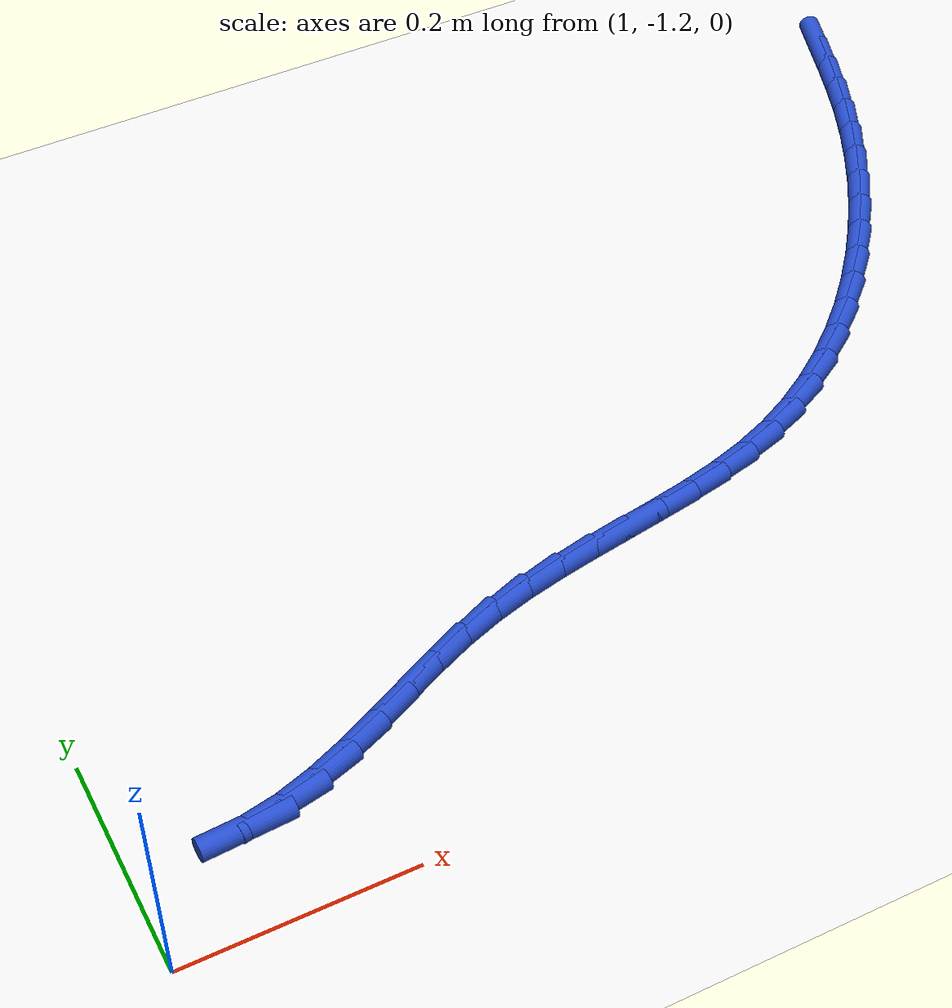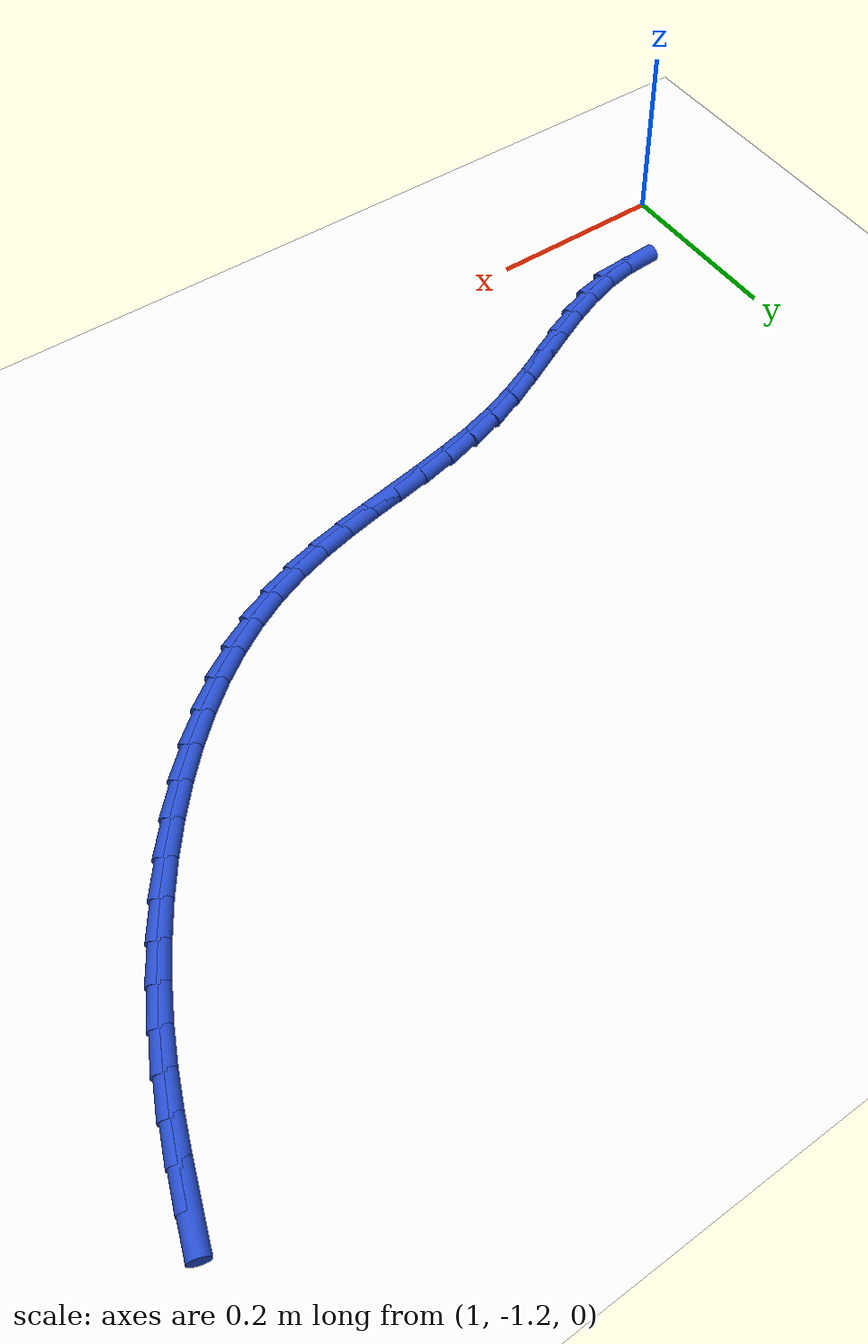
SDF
<sdf version="1.6">
 <world name="default">
  <model name="ground_plane">
   <static>1</static>
   <link name="link">
    <collision name="collision">
     <geometry><plane><normal>0 0 1</normal><size>100 100</size></plane></geometry>
     <surface><friction><ode><mu>100</mu><mu2>50</mu2></ode></friction></surface>
    </collision>
    <visual name="visual">
     <cast_shadows>0</cast_shadows>
     <geometry><plane><normal>0 0 1</normal><size>100 100</size></plane></geometry>
     <material>
      <script><uri>file://media/materials/scripts/gazebo.material</uri><name>Gazebo/WhiteGlow</name></script>
     </material>
    </visual>
   </link>
  </model>
  <model name="line">
   <link name="link_118">
    <pose>1.9770778803152473 -0.5058553416775723 0.01 0 1.57 1.2799804330975286</pose>
    <collision name="collision">
     <geometry><cylinder><radius>0.01</radius><length>0.08</length></cylinder></geometry>
    </collision>
    <visual name="visual">
     <material>
      <script><name>Gazebo/Blue</name><uri>file://media/materials/scripts/gazebo.material</uri></script>
     </material>
     <geometry><cylinder><radius>0.01</radius><length>0.08</length></cylinder></geometry>
    </visual>
   </link>
   <link name="link_119">
    <pose>1.9674425149028936 -0.5380481764186 0.01 0 1.57 1.2593463494385908</pose>
    <collision name="collision">
     <geometry><cylinder><radius>0.01</radius><length>0.08</length></cylinder></geometry>
    </collision>
    <visual name="visual">
     <material>
      <script><name>Gazebo/Blue</name><uri>file://media/materials/scripts/gazebo.material</uri></script>
     </material>
     <geometry><cylinder><radius>0.01</radius><length>0.08</length></cylinder></geometry>
    </visual>
   </link>
   <link name="link_120">
    <pose>1.9571189584123065 -0.5701161801172238 0.01 0 1.57 1.2258387370005617</pose>
    <collision name="collision">
     <geometry><cylinder><radius>0.01</radius><length>0.08</length></cylinder></geometry>
    </collision>
    <visual name="visual">
     <material>
      <script><name>Gazebo/Blue</name><uri>file://media/materials/scripts/gazebo.material</uri></script>
     </material>
     <geometry><cylinder><radius>0.01</radius><length>0.08</length></cylinder></geometry>
    </visual>
   </link>
   <link name="link_121">
    <pose>1.9456061729770204 -0.6021562454951519 0.01 0 1.57 1.1814369075997921</pose>
    <collision name="collision">
     <geometry><cylinder><radius>0.01</radius><length>0.08</length></cylinder></geometry>
    </collision>
    <visual name="visual">
     <material>
      <script><name>Gazebo/Blue</name><uri>file://media/materials/scripts/gazebo.material</uri></script>
     </material>
     <geometry><cylinder><radius>0.01</radius><length>0.08</length></cylinder></geometry>
    </visual>
   </link>
   <link name="link_122">
    <pose>1.9324410077186442 -0.6342424343302945 0.01 0 1.57 1.1340029290755915</pose>
    <collision name="collision">
     <geometry><cylinder><radius>0.01</radius><length>0.08</length></cylinder></geometry>
    </collision>
    <visual name="visual">
     <material>
      <script><name>Gazebo/Blue</name><uri>file://media/materials/scripts/gazebo.material</uri></script>
     </material>
     <geometry><cylinder><radius>0.01</radius><length>0.08</length></cylinder></geometry>
    </visual>
   </link>
   <link name="link_123">
    <pose>1.9175005752696692 -0.6662437634104945 0.01 0 1.57 1.0866487207022986</pose>
    <collision name="collision">
     <geometry><cylinder><radius>0.01</radius><length>0.08</length></cylinder></geometry>
    </collision>
    <visual name="visual">
     <material>
      <script><name>Gazebo/Blue</name><uri>file://media/materials/scripts/gazebo.material</uri></script>
     </material>
     <geometry><cylinder><radius>0.01</radius><length>0.08</length></cylinder></geometry>
    </visual>
   </link>
   <link name="link_124">
    <pose>1.9008417432928035 -0.6979209279810086 0.01 0 1.57 1.0386630814185869</pose>
    <collision name="collision">
     <geometry><cylinder><radius>0.01</radius><length>0.08</length></cylinder></geometry>
    </collision>
    <visual name="visual">
     <material>
      <script><name>Gazebo/Blue</name><uri>file://media/materials/scripts/gazebo.material</uri></script>
     </material>
     <geometry><cylinder><radius>0.01</radius><length>0.08</length></cylinder></geometry>
    </visual>
   </link>
   <link name="link_125">
    <pose>1.882523006493306 -0.7290336428207389 0.01 0 1.57 0.9893360842283133</pose>
    <collision name="collision">
     <geometry><cylinder><radius>0.01</radius><length>0.08</length></cylinder></geometry>
    </collision>
    <visual name="visual">
     <material>
      <script><name>Gazebo/Blue</name><uri>file://media/materials/scripts/gazebo.material</uri></script>
     </material>
     <geometry><cylinder><radius>0.01</radius><length>0.08</length></cylinder></geometry>
    </visual>
   </link>
   <link name="link_126">
    <pose>1.8626028595764363 -0.7593416227085884 0.01 0 1.57 0.9379684176300297</pose>
    <collision name="collision">
     <geometry><cylinder><radius>0.01</radius><length>0.08</length></cylinder></geometry>
    </collision>
    <visual name="visual">
     <material>
      <script><name>Gazebo/Blue</name><uri>file://media/materials/scripts/gazebo.material</uri></script>
     </material>
     <geometry><cylinder><radius>0.01</radius><length>0.08</length></cylinder></geometry>
    </visual>
   </link>
   <link name="link_127">
    <pose>1.8411397972474528 -0.7886045824234593 0.01 0 1.57 0.8838545923353223</pose>
    <collision name="collision">
     <geometry><cylinder><radius>0.01</radius><length>0.08</length></cylinder></geometry>
    </collision>
    <visual name="visual">
     <material>
      <script><name>Gazebo/Blue</name><uri>file://media/materials/scripts/gazebo.material</uri></script>
     </material>
     <geometry><cylinder><radius>0.01</radius><length>0.08</length></cylinder></geometry>
    </visual>
   </link>
   <link name="link_128">
    <pose>1.8181923142116148 -0.8165822367442546 0.01 0 1.57 0.8262732752755951</pose>
    <collision name="collision">
     <geometry><cylinder><radius>0.01</radius><length>0.08</length></cylinder></geometry>
    </collision>
    <visual name="visual">
     <material>
      <script><name>Gazebo/Blue</name><uri>file://media/materials/scripts/gazebo.material</uri></script>
     </material>
     <geometry><cylinder><radius>0.01</radius><length>0.08</length></cylinder></geometry>
    </visual>
   </link>
   <link name="link_129">
    <pose>1.7938189051741829 -0.8430343004498768 0.01 0 1.57 0.7644867837399518</pose>
    <collision name="collision">
     <geometry><cylinder><radius>0.01</radius><length>0.08</length></cylinder></geometry>
    </collision>
    <visual name="visual">
     <material>
      <script><name>Gazebo/Blue</name><uri>file://media/materials/scripts/gazebo.material</uri></script>
     </material>
     <geometry><cylinder><radius>0.01</radius><length>0.08</length></cylinder></geometry>
    </visual>
   </link>
   <link name="link_130">
    <pose>1.7680780648404135 -0.8677204883192278 0.01 0 1.57 0.6977534280284379</pose>
    <collision name="collision">
     <geometry><cylinder><radius>0.01</radius><length>0.08</length></cylinder></geometry>
    </collision>
    <visual name="visual">
     <material>
      <script><name>Gazebo/Blue</name><uri>file://media/materials/scripts/gazebo.material</uri></script>
     </material>
     <geometry><cylinder><radius>0.01</radius><length>0.08</length></cylinder></geometry>
    </visual>
   </link>
   <link name="link_131">
    <pose>1.741028287915568 -0.890400515131211 0.01 0 1.57 0.6253580856650874</pose>
    <collision name="collision">
     <geometry><cylinder><radius>0.01</radius><length>0.08</length></cylinder></geometry>
    </collision>
    <visual name="visual">
     <material>
      <script><name>Gazebo/Blue</name><uri>file://media/materials/scripts/gazebo.material</uri></script>
     </material>
     <geometry><cylinder><radius>0.01</radius><length>0.08</length></cylinder></geometry>
    </visual>
   </link>
   <link name="link_132">
    <pose>1.7127280691049045 -0.9108340956647285 0.01 0 1.57 0.5466674994050639</pose>
    <collision name="collision">
     <geometry><cylinder><radius>0.01</radius><length>0.08</length></cylinder></geometry>
    </collision>
    <visual name="visual">
     <material>
      <script><name>Gazebo/Blue</name><uri>file://media/materials/scripts/gazebo.material</uri></script>
     </material>
     <geometry><cylinder><radius>0.01</radius><length>0.08</length></cylinder></geometry>
    </visual>
   </link>
   <link name="link_133">
    <pose>1.6832359031136819 -0.9287809446986827 0.01 0 1.57 0.4612159250287406</pose>
    <collision name="collision">
     <geometry><cylinder><radius>0.01</radius><length>0.08</length></cylinder></geometry>
    </collision>
    <visual name="visual">
     <material>
      <script><name>Gazebo/Blue</name><uri>file://media/materials/scripts/gazebo.material</uri></script>
     </material>
     <geometry><cylinder><radius>0.01</radius><length>0.08</length></cylinder></geometry>
    </visual>
   </link>
   <link name="link_134">
    <pose>1.6526102846471602 -0.9440007770119767 0.01 0 1.57 0.3700715879662836</pose>
    <collision name="collision">
     <geometry><cylinder><radius>0.01</radius><length>0.08</length></cylinder></geometry>
    </collision>
    <visual name="visual">
     <material>
      <script><name>Gazebo/Blue</name><uri>file://media/materials/scripts/gazebo.material</uri></script>
     </material>
     <geometry><cylinder><radius>0.01</radius><length>0.08</length></cylinder></geometry>
    </visual>
   </link>
   <link name="link_135">
    <pose>1.6209162049503933 -0.9562963532867395 0.01 0 1.57 0.28849870558564455</pose>
    <collision name="collision">
     <geometry><cylinder><radius>0.01</radius><length>0.08</length></cylinder></geometry>
    </collision>
    <visual name="visual">
     <material>
      <script><name>Gazebo/Blue</name><uri>file://media/materials/scripts/gazebo.material</uri></script>
     </material>
     <geometry><cylinder><radius>0.01</radius><length>0.08</length></cylinder></geometry>
    </visual>
   </link>
   <link name="link_136">
    <pose>1.5882951927291367 -0.965977569423321 0.01 0 1.57 0.22706903356756555</pose>
    <collision name="collision">
     <geometry><cylinder><radius>0.01</radius><length>0.08</length></cylinder></geometry>
    </collision>
    <visual name="visual">
     <material>
      <script><name>Gazebo/Blue</name><uri>file://media/materials/scripts/gazebo.material</uri></script>
     </material>
     <geometry><cylinder><radius>0.01</radius><length>0.08</length></cylinder></geometry>
    </visual>
   </link>
   <link name="link_137">
    <pose>1.5549386420594038 -0.9736847279647114 0.01 0 1.57 0.18599863920189663</pose>
    <collision name="collision">
     <geometry><cylinder><radius>0.01</radius><length>0.08</length></cylinder></geometry>
    </collision>
    <visual name="visual">
     <material>
      <script><name>Gazebo/Blue</name><uri>file://media/materials/scripts/gazebo.material</uri></script>
     </material>
     <geometry><cylinder><radius>0.01</radius><length>0.08</length></cylinder></geometry>
    </visual>
   </link>
   <link name="link_138">
    <pose>1.5210388002335813 -0.9800637848433422 0.01 0 1.57 0.16481999339093975</pose>
    <collision name="collision">
     <geometry><cylinder><radius>0.01</radius><length>0.08</length></cylinder></geometry>
    </collision>
    <visual name="visual">
     <material>
      <script><name>Gazebo/Blue</name><uri>file://media/materials/scripts/gazebo.material</uri></script>
     </material>
     <geometry><cylinder><radius>0.01</radius><length>0.08</length></cylinder></geometry>
    </visual>
   </link>
   <link name="link_139">
    <pose>1.486787914544056 -0.9857606959916434 0.01 0 1.57 0.16304913002551563</pose>
    <collision name="collision">
     <geometry><cylinder><radius>0.01</radius><length>0.08</length></cylinder></geometry>
    </collision>
    <visual name="visual">
     <material>
      <script><name>Gazebo/Blue</name><uri>file://media/materials/scripts/gazebo.material</uri></script>
     </material>
     <geometry><cylinder><radius>0.01</radius><length>0.08</length></cylinder></geometry>
    </visual>
   </link>
   <link name="link_140">
    <pose>1.452378232283215 -0.9914214173420459 0.01 0 1.57 0.18042404218863886</pose>
    <collision name="collision">
     <geometry><cylinder><radius>0.01</radius><length>0.08</length></cylinder></geometry>
    </collision>
    <visual name="visual">
     <material>
      <script><name>Gazebo/Blue</name><uri>file://media/materials/scripts/gazebo.material</uri></script>
     </material>
     <geometry><cylinder><radius>0.01</radius><length>0.08</length></cylinder></geometry>
    </visual>
   </link>
   <link name="link_141">
    <pose>1.4180020007434468 -0.9976919048269807 0.01 0 1.57 0.2169159438626041</pose>
    <collision name="collision">
     <geometry><cylinder><radius>0.01</radius><length>0.08</length></cylinder></geometry>
    </collision>
    <visual name="visual">
     <material>
      <script><name>Gazebo/Blue</name><uri>file://media/materials/scripts/gazebo.material</uri></script>
     </material>
     <geometry><cylinder><radius>0.01</radius><length>0.08</length></cylinder></geometry>
    </visual>
   </link>
   <link name="link_142">
    <pose>1.3838514672171363 -1.0052181143788785 0.01 0 1.57 0.2725347956542681</pose>
    <collision name="collision">
     <geometry><cylinder><radius>0.01</radius><length>0.08</length></cylinder></geometry>
    </collision>
    <visual name="visual">
     <material>
      <script><name>Gazebo/Blue</name><uri>file://media/materials/scripts/gazebo.material</uri></script>
     </material>
     <geometry><cylinder><radius>0.01</radius><length>0.08</length></cylinder></geometry>
    </visual>
   </link>
   <link name="link_143">
    <pose>1.3501188789966712 -1.01464600193017 0.01 0 1.57 0.3456474175619138</pose>
    <collision name="collision">
     <geometry><cylinder><radius>0.01</radius><length>0.08</length></cylinder></geometry>
    </collision>
    <visual name="visual">
     <material>
      <script><name>Gazebo/Blue</name><uri>file://media/materials/scripts/gazebo.material</uri></script>
     </material>
     <geometry><cylinder><radius>0.01</radius><length>0.08</length></cylinder></geometry>
    </visual>
   </link>
   <link name="link_144">
    <pose>1.316987074546336 -1.0265768887079503 0.01 0 1.57 0.41134427652662003</pose>
    <collision name="collision">
     <geometry><cylinder><radius>0.01</radius><length>0.08</length></cylinder></geometry>
    </collision>
    <visual name="visual">
     <material>
      <script><name>Gazebo/Blue</name><uri>file://media/materials/scripts/gazebo.material</uri></script>
     </material>
     <geometry><cylinder><radius>0.01</radius><length>0.08</length></cylinder></geometry>
    </visual>
   </link>
   <link name="link_145">
    <pose>1.2844605290495206 -1.0407659552298663 0.01 0 1.57 0.4487663055556706</pose>
    <collision name="collision">
     <geometry><cylinder><radius>0.01</radius><length>0.08</length></cylinder></geometry>
    </collision>
    <visual name="visual">
     <material>
      <script><name>Gazebo/Blue</name><uri>file://media/materials/scripts/gazebo.material</uri></script>
     </material>
     <geometry><cylinder><radius>0.01</radius><length>0.08</length></cylinder></geometry>
    </visual>
   </link>
   <link name="link_146">
    <pose>1.2523842321452996 -1.056211795731142 0.01 0 1.57 0.4581261724236358</pose>
    <collision name="collision">
     <geometry><cylinder><radius>0.01</radius><length>0.08</length></cylinder></geometry>
    </collision>
    <visual name="visual">
     <material>
      <script><name>Gazebo/Blue</name><uri>file://media/materials/scripts/gazebo.material</uri></script>
     </material>
     <geometry><cylinder><radius>0.01</radius><length>0.08</length></cylinder></geometry>
    </visual>
   </link>
   <link name="link_147">
    <pose>1.220597555009978 -1.0718863509225187 0.01 0 1.57 0.43925992959940535</pose>
    <collision name="collision">
     <geometry><cylinder><radius>0.01</radius><length>0.08</length></cylinder></geometry>
    </collision>
    <visual name="visual">
     <material>
      <script><name>Gazebo/Blue</name><uri>file://media/materials/scripts/gazebo.material</uri></script>
     </material>
     <geometry><cylinder><radius>0.01</radius><length>0.08</length></cylinder></geometry>
    </visual>
   </link>
   <link name="link_148">
    <pose>1.1889398688198598 -1.0867615615147357 0.01 0 1.57 0.3905871175762668</pose>
    <collision name="collision">
     <geometry><cylinder><radius>0.01</radius><length>0.08</length></cylinder></geometry>
    </collision>
    <visual name="visual">
     <material>
      <script><name>Gazebo/Blue</name><uri>file://media/materials/scripts/gazebo.material</uri></script>
     </material>
     <geometry><cylinder><radius>0.01</radius><length>0.08</length></cylinder></geometry>
    </visual>
   </link>
   <link name="link_149">
    <pose>1.15725054475125 -1.0998093682185344 0.01 0 1.57 0.3094250661260895</pose>
    <collision name="collision">
     <geometry><cylinder><radius>0.01</radius><length>0.08</length></cylinder></geometry>
    </collision>
    <visual name="visual">
     <material>
      <script><name>Gazebo/Blue</name><uri>file://media/materials/scripts/gazebo.material</uri></script>
     </material>
     <geometry><cylinder><radius>0.01</radius><length>0.08</length></cylinder></geometry>
    </visual>
   </link>
   <link name="link_150">
    <pose>1.1253689539804526 -1.1100017117446546 0.01 0 1.57 0.19330951270795504</pose>
    <collision name="collision">
     <geometry><cylinder><radius>0.01</radius><length>0.08</length></cylinder></geometry>
    </collision>
    <visual name="visual">
     <material>
      <script><name>Gazebo/Blue</name><uri>file://media/materials/scripts/gazebo.material</uri></script>
     </material>
     <geometry><cylinder><radius>0.01</radius><length>0.08</length></cylinder></geometry>
    </visual>
   </link>
   <link name="link_151">
    <pose>1.0931346524702976 -1.1163117038243993 0.01 0 1.57 0.055470906732373156</pose>
    <collision name="collision">
     <geometry><cylinder><radius>0.01</radius><length>0.08</length></cylinder></geometry>
    </collision>
    <visual name="visual">
     <material>
      <script><name>Gazebo/Blue</name><uri>file://media/materials/scripts/gazebo.material</uri></script>
     </material>
     <geometry><cylinder><radius>0.01</radius><length>0.08</length></cylinder></geometry>
    </visual>
   </link>
  </model>
 </world>
</sdf>
